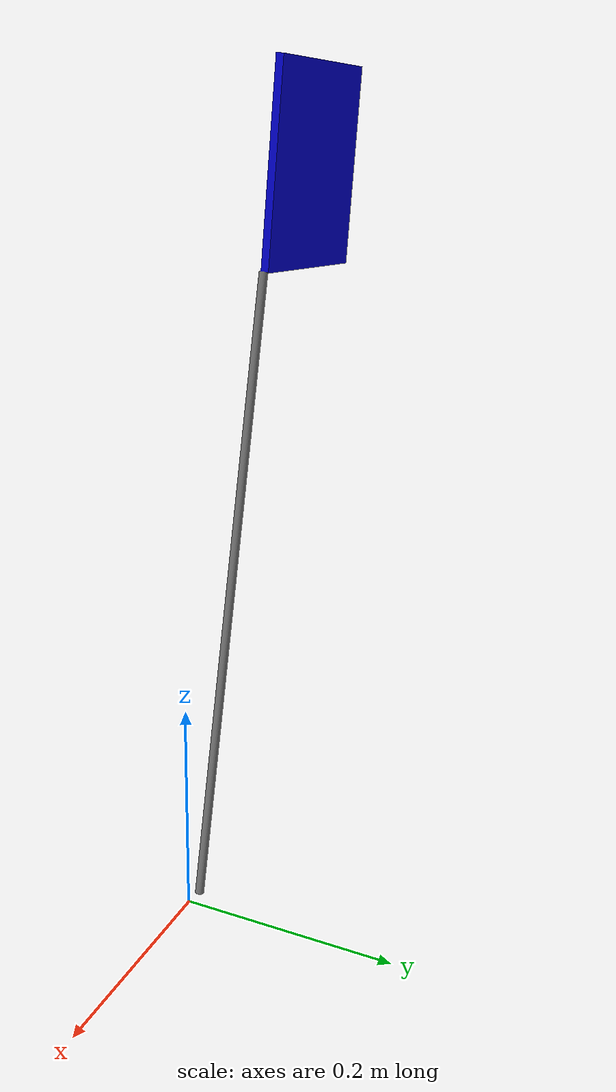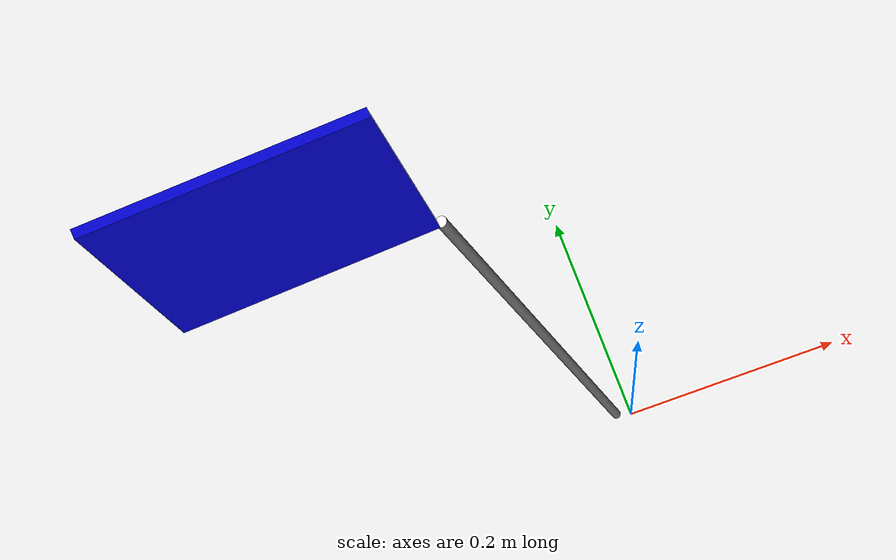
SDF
<?xml version='1.0'?>
<sdf version='1.4'>
    <model name="blue_flag">
        <static>true</static>
	    <link name="link">
		<collision name='collision'>
		    <geometry>
			<mesh>
			    <uri>model://blue_flag/meshes/blue_flag.dae</uri>
			</mesh>
		    </geometry>
		</collision>
		<visual name='visual'>
		    <geometry>
			<mesh>
			    <uri>model://blue_flag/meshes/blue_flag.dae</uri>
			</mesh>
		    </geometry>
		</visual>
	    </link>
    </model>
</sdf>
